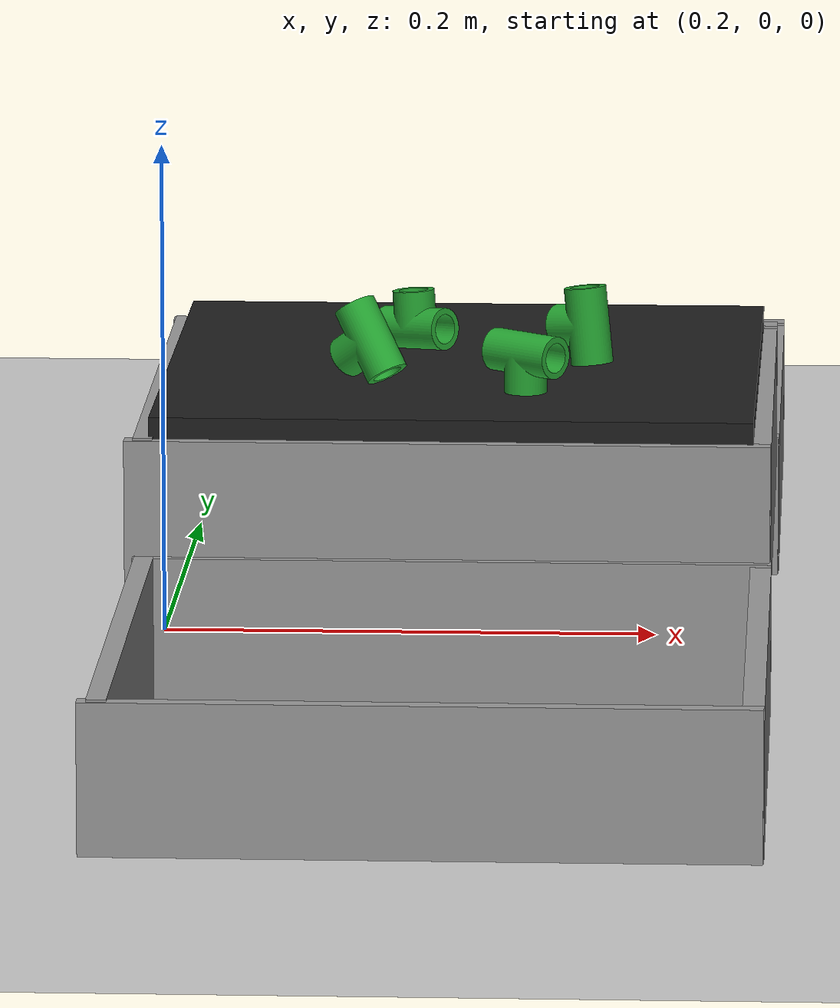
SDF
<sdf version="1.6">
 <world name="empty">
  <light name="sun" type="directional">
   <pose>0 0 10 0 -0 0</pose>
   <diffuse>0.8 0.8 0.8 1</diffuse>
   <specular>0.2 0.2 0.2 1</specular>
   <attenuation>
    <range>1000</range>
    <constant>0.9</constant>
    <linear>0.01</linear>
    <quadratic>0.001</quadratic>
   </attenuation>
   <direction>-0.5 0.1 -0.9</direction>
  </light>
  <model name="ground_plane">
   <static>1</static>
   <link name="link">
    <collision name="collision">
     <geometry><plane><normal>0 0 1</normal><size>100 100</size></plane></geometry>
     <surface><friction><ode><mu>100</mu><mu2>50</mu2></ode></friction></surface>
    </collision>
    <visual name="visual">
     <cast_shadows>0</cast_shadows>
     <geometry><plane><normal>0 0 1</normal><size>100 100</size></plane></geometry>
     <material>
      <script><uri>file://media/materials/scripts/gazebo.material</uri><name>Gazebo/Grey</name></script>
     </material>
    </visual>
   </link>
  </model>
  <physics name="default_physics" default="0" type="ode">
   <max_step_size>0.001</max_step_size>
   <real_time_factor>1</real_time_factor>
   <real_time_update_rate>1000</real_time_update_rate>
  </physics>
  <model name="table_box_model">
   <static>1</static>
   <pose>0.322423 -0.002458 0.055401 0 -0 1.5708</pose>
   <link name="table_box_link">
    <inertial>
     <mass>1</mass>
     <inertia>
      <ixx>0.166667</ixx>
      <ixy>0</ixy>
      <ixz>0</ixz>
      <iyy>0.166667</iyy>
      <iyz>0</iyz>
      <izz>0.166667</izz>
     </inertia>
    </inertial>
    <collision name="collision">
     <geometry><box><size>0.236707 0.237406 0.11625</size></box></geometry>
     <surface><friction><ode><mu>0.6</mu><mu2>0.6</mu2></ode></friction></surface>
    </collision>
    <visual name="visual">
     <geometry><box><size>0.236707 0.237406 0.11625</size></box></geometry>
     <material>
      <script><name>Gazebo/Black</name><uri>file://media/materials/scripts/gazebo.material</uri></script>
     </material>
    </visual>
   </link>
  </model>
  <gravity>0 0 -9.81</gravity>
  <magnetic_field>6e-06 2.3e-05 -4.2e-05</magnetic_field>
  <atmosphere type="adiabatic"/>
  <scene><ambient>0.4 0.4 0.4 1</ambient><background>0.7 0.7 0.7 1</background><shadows>1</shadows></scene>
  <spherical_coordinates>
   <surface_model>EARTH_WGS84</surface_model>
   <latitude_deg>0</latitude_deg>
   <longitude_deg>0</longitude_deg>
   <elevation>0</elevation>
   <heading_deg>0</heading_deg>
  </spherical_coordinates>
  <model name="coke_can_box_model_4_clone">
   <pose>0.367003 -0.066657 0.113601 1.5749 -0.005337 -2.22681</pose>
   <link name="coke_can">
    <inertial>
     <mass>1e-15</mass>
     <inertia><ixx>0.00016</ixx><ixy>0</ixy><ixz>0</ixz><iyy>0.00016</iyy><iyz>0</iyz><izz>6e-05</izz></inertia>
    </inertial>
    <collision name="collision">
     <geometry><mesh><uri>model://twp/meshes/TWP.STL</uri><scale>0.0005 0.0005 0.0005</scale></mesh></geometry>
     <surface>
      <friction><ode><mu>100</mu><mu2>100</mu2></ode></friction>
      <contact><ode><kp>1e+06</kp><kd>100</kd></ode></contact>
     </surface>
    </collision>
    <visual name="visual">
     <geometry><mesh><uri>model://twp/meshes/TWP.STL</uri><scale>0.0005 0.0005 0.0005</scale></mesh></geometry>
     <material>
      <script><name>Gazebo/Green</name><uri>file://media/materials/scripts/gazebo.material</uri></script>
     </material>
    </visual>
   </link>
  </model>
  <model name="bbox">
   <link name="link">
    <inertial>
     <mass>0.00036033</mass>
     <inertia>
      <ixx>1.2e-07</ixx>
      <ixy>0</ixy>
      <ixz>0</ixz>
      <iyy>1.43e-06</iyy>
      <iyz>0</iyz>
      <izz>1.31e-06</izz>
     </inertia>
    </inertial>
    <pose>0.200727 -0.115703 0.177148 0 -0 0</pose>
    <visual name="visual">
     <geometry><box><size>0.253827 0.006561 0.062445</size></box></geometry>
     <material>
      <script><name>Gazebo/Grey</name><uri>file://media/materials/scripts/gazebo.material</uri></script>
      <emissive>0 0 0 1</emissive>
      <shader type="pixel"><normal_map>__default__</normal_map></shader>
      <ambient>0.3 0.3 0.3 1</ambient>
      <diffuse>0.7 0.7 0.7 1</diffuse>
      <specular>0.01 0.01 0.01 1</specular>
     </material>
    </visual>
    <collision name="collision">
     <geometry><box><size>0.253827 0.006561 0.062445</size></box></geometry>
     <surface>
      <friction>
       <ode><mu>1</mu><mu2>1</mu2><fdir1>0 0 0</fdir1><slip1>0</slip1><slip2>0</slip2></ode>
       <torsional>
        <coefficient>1</coefficient>
        <patch_radius>0</patch_radius>
        <surface_radius>0</surface_radius>
        <use_patch_radius>1</use_patch_radius>
        <ode><slip>0</slip></ode>
       </torsional>
      </friction>
      <bounce><restitution_coefficient>0</restitution_coefficient><threshold>1e+06</threshold></bounce>
      <contact>
       <collide_without_contact>0</collide_without_contact>
       <collide_without_contact_bitmask>1</collide_without_contact_bitmask>
       <collide_bitmask>1</collide_bitmask>
       <ode>
        <soft_cfm>0</soft_cfm>
        <soft_erp>0.2</soft_erp>
        <kp>1e+13</kp>
        <kd>1</kd>
        <max_vel>0.01</max_vel>
        <min_depth>0</min_depth>
       </ode>
       <bullet>
        <split_impulse>1</split_impulse>
        <split_impulse_penetration_threshold>-0.01</split_impulse_penetration_threshold>
        <soft_cfm>0</soft_cfm>
        <soft_erp>0.2</soft_erp>
        <kp>1e+13</kp>
        <kd>1</kd>
       </bullet>
      </contact>
     </surface>
    </collision>
   </link>
   <link name="link_clone">
    <inertial>
     <mass>0.00048323</mass>
     <inertia><ixx>1.6e-07</ixx><ixy>0</ixy><ixz>0</ixz><iyy>1.95e-06</iyy><iyz>0</iyz><izz>1.8e-06</izz></inertia>
    </inertial>
    <pose>0.200752 0.124095 0.178106 -1e-05 -0 -0.000119</pose>
    <visual name="visual">
     <geometry><box><size>0.251174 0.008749 0.062028</size></box></geometry>
     <material>
      <script><name>Gazebo/Grey</name><uri>file://media/materials/scripts/gazebo.material</uri></script>
      <shader type="pixel"><normal_map>__default__</normal_map></shader>
      <emissive>0 0 0 1</emissive>
      <ambient>0.3 0.3 0.3 1</ambient>
      <diffuse>0.7 0.7 0.7 1</diffuse>
      <specular>0.01 0.01 0.01 1</specular>
     </material>
    </visual>
    <collision name="collision">
     <geometry><box><size>0.251174 0.008749 0.062028</size></box></geometry>
     <surface>
      <friction>
       <ode><mu>1</mu><mu2>1</mu2><fdir1>0 0 0</fdir1><slip1>0</slip1><slip2>0</slip2></ode>
       <torsional>
        <coefficient>1</coefficient>
        <patch_radius>0</patch_radius>
        <surface_radius>0</surface_radius>
        <use_patch_radius>1</use_patch_radius>
        <ode><slip>0</slip></ode>
       </torsional>
      </friction>
      <bounce><restitution_coefficient>0</restitution_coefficient><threshold>1e+06</threshold></bounce>
      <contact>
       <collide_without_contact>0</collide_without_contact>
       <collide_without_contact_bitmask>1</collide_without_contact_bitmask>
       <collide_bitmask>1</collide_bitmask>
       <ode>
        <soft_cfm>0</soft_cfm>
        <soft_erp>0.2</soft_erp>
        <kp>1e+13</kp>
        <kd>1</kd>
        <max_vel>0.01</max_vel>
        <min_depth>0</min_depth>
       </ode>
       <bullet>
        <split_impulse>1</split_impulse>
        <split_impulse_penetration_threshold>-0.01</split_impulse_penetration_threshold>
        <soft_cfm>0</soft_cfm>
        <soft_erp>0.2</soft_erp>
        <kp>1e+13</kp>
        <kd>1</kd>
       </bullet>
      </contact>
     </surface>
    </collision>
   </link>
   <link name="link_clone_0">
    <inertial>
     <mass>0.00045339</mass>
     <inertia><ixx>1.5e-07</ixx><ixy>0</ixy><ixz>0</ixz><iyy>1.75e-06</iyy><iyz>0</iyz><izz>1.6e-06</izz></inertia>
    </inertial>
    <pose>0.322983 0.005 0.176771 0 -1e-05 -1.56405</pose>
    <visual name="visual">
     <geometry><box><size>0.245781 0.008304 0.062746</size></box></geometry>
     <material>
      <script><name>Gazebo/Grey</name><uri>file://media/materials/scripts/gazebo.material</uri></script>
      <shader type="pixel"><normal_map>__default__</normal_map></shader>
      <emissive>0 0 0 1</emissive>
      <ambient>0.3 0.3 0.3 1</ambient>
      <diffuse>0.7 0.7 0.7 1</diffuse>
      <specular>0.01 0.01 0.01 1</specular>
     </material>
    </visual>
    <collision name="collision">
     <geometry><box><size>0.24781 0.008304 0.062746</size></box></geometry>
     <surface>
      <friction>
       <ode><mu>1</mu><mu2>1</mu2><fdir1>0 0 0</fdir1><slip1>0</slip1><slip2>0</slip2></ode>
       <torsional>
        <coefficient>1</coefficient>
        <patch_radius>0</patch_radius>
        <surface_radius>0</surface_radius>
        <use_patch_radius>1</use_patch_radius>
        <ode><slip>0</slip></ode>
       </torsional>
      </friction>
      <bounce><restitution_coefficient>0</restitution_coefficient><threshold>1e+06</threshold></bounce>
      <contact>
       <collide_without_contact>0</collide_without_contact>
       <collide_without_contact_bitmask>1</collide_without_contact_bitmask>
       <collide_bitmask>1</collide_bitmask>
       <ode>
        <soft_cfm>0</soft_cfm>
        <soft_erp>0.2</soft_erp>
        <kp>1e+13</kp>
        <kd>1</kd>
        <max_vel>0.01</max_vel>
        <min_depth>0</min_depth>
       </ode>
       <bullet>
        <split_impulse>1</split_impulse>
        <split_impulse_penetration_threshold>-0.01</split_impulse_penetration_threshold>
        <soft_cfm>0</soft_cfm>
        <soft_erp>0.2</soft_erp>
        <kp>1e+13</kp>
        <kd>1</kd>
       </bullet>
      </contact>
     </surface>
    </collision>
   </link>
   <link name="link_clone_0_clone">
    <inertial>
     <mass>0.00042111</mass>
     <inertia>
      <ixx>1.4e-07</ixx>
      <ixy>0</ixy>
      <ixz>0</ixz>
      <iyy>1.63e-06</iyy>
      <iyz>0</iyz>
      <izz>1.49e-06</izz>
     </inertia>
    </inertial>
    <pose>0.080423 0.005505 0.178062 -0 -2e-05 -1.56415</pose>
    <visual name="visual">
     <geometry><box><size>0.246174 0.007696 0.062424</size></box></geometry>
     <material>
      <script><name>Gazebo/Grey</name><uri>file://media/materials/scripts/gazebo.material</uri></script>
      <shader type="pixel"><normal_map>__default__</normal_map></shader>
      <emissive>0 0 0 1</emissive>
      <ambient>0.3 0.3 0.3 1</ambient>
      <diffuse>0.7 0.7 0.7 1</diffuse>
      <specular>0.01 0.01 0.01 1</specular>
     </material>
    </visual>
    <collision name="collision">
     <geometry><box><size>0.246174 0.007696 0.062424</size></box></geometry>
     <surface>
      <friction>
       <ode><mu>1</mu><mu2>1</mu2><fdir1>0 0 0</fdir1><slip1>0</slip1><slip2>0</slip2></ode>
       <torsional>
        <coefficient>1</coefficient>
        <patch_radius>0</patch_radius>
        <surface_radius>0</surface_radius>
        <use_patch_radius>1</use_patch_radius>
        <ode><slip>0</slip></ode>
       </torsional>
      </friction>
      <bounce><restitution_coefficient>0</restitution_coefficient><threshold>1e+06</threshold></bounce>
      <contact>
       <collide_without_contact>0</collide_without_contact>
       <collide_without_contact_bitmask>1</collide_without_contact_bitmask>
       <collide_bitmask>1</collide_bitmask>
       <ode>
        <soft_cfm>0</soft_cfm>
        <soft_erp>0.2</soft_erp>
        <kp>1e+13</kp>
        <kd>1</kd>
        <max_vel>0.01</max_vel>
        <min_depth>0</min_depth>
       </ode>
       <bullet>
        <split_impulse>1</split_impulse>
        <split_impulse_penetration_threshold>-0.01</split_impulse_penetration_threshold>
        <soft_cfm>0</soft_cfm>
        <soft_erp>0.2</soft_erp>
        <kp>1e+13</kp>
        <kd>1</kd>
       </bullet>
      </contact>
     </surface>
    </collision>
   </link>
   <joint name="link_JOINT_7" type="fixed">
    <parent>link</parent>
    <child>link_clone_0</child>
    <physics>
     <ode><limit><cfm>0</cfm><erp>0.2</erp></limit><suspension><cfm>0</cfm><erp>0.2</erp></suspension></ode>
    </physics>
   </joint>
   <joint name="link_clone_0_JOINT_8" type="fixed">
    <parent>link_clone_0</parent>
    <child>link_clone</child>
    <physics>
     <ode><limit><cfm>0</cfm><erp>0.2</erp></limit><suspension><cfm>0</cfm><erp>0.2</erp></suspension></ode>
    </physics>
   </joint>
   <joint name="link_clone_0_clone_JOINT_6" type="fixed">
    <parent>link_clone_0_clone</parent>
    <child>link</child>
    <physics>
     <ode><limit><cfm>0</cfm><erp>0.2</erp></limit><suspension><cfm>0</cfm><erp>0.2</erp></suspension></ode>
    </physics>
   </joint>
   <joint name="link_clone_JOINT_9" type="fixed">
    <parent>link_clone</parent>
    <child>link_clone_0_clone</child>
    <physics>
     <ode><limit><cfm>0</cfm><erp>0.2</erp></limit><suspension><cfm>0</cfm><erp>0.2</erp></suspension></ode>
    </physics>
   </joint>
   <static>1</static>
   <pose>0.120327 -0.006727 -0.103357 0 -0 0</pose>
  </model>
  <model name="bbox_clone">
   <link name="link">
    <inertial>
     <mass>0.00036033</mass>
     <inertia>
      <ixx>1.2e-07</ixx>
      <ixy>0</ixy>
      <ixz>0</ixz>
      <iyy>1.43e-06</iyy>
      <iyz>0</iyz>
      <izz>1.31e-06</izz>
     </inertia>
    </inertial>
    <pose>0.200727 -0.115703 0.177148 0 -0 0</pose>
    <visual name="visual">
     <geometry><box><size>0.253827 0.006561 0.062445</size></box></geometry>
     <material>
      <script><name>Gazebo/Grey</name><uri>file://media/materials/scripts/gazebo.material</uri></script>
      <emissive>0 0 0 1</emissive>
      <shader type="pixel"><normal_map>__default__</normal_map></shader>
      <ambient>0.3 0.3 0.3 1</ambient>
      <diffuse>0.7 0.7 0.7 1</diffuse>
      <specular>0.01 0.01 0.01 1</specular>
     </material>
    </visual>
    <collision name="collision">
     <geometry><box><size>0.253827 0.006561 0.062445</size></box></geometry>
     <surface>
      <friction>
       <ode><mu>1</mu><mu2>1</mu2><fdir1>0 0 0</fdir1><slip1>0</slip1><slip2>0</slip2></ode>
       <torsional>
        <coefficient>1</coefficient>
        <patch_radius>0</patch_radius>
        <surface_radius>0</surface_radius>
        <use_patch_radius>1</use_patch_radius>
        <ode><slip>0</slip></ode>
       </torsional>
      </friction>
      <bounce><restitution_coefficient>0</restitution_coefficient><threshold>1e+06</threshold></bounce>
      <contact>
       <collide_without_contact>0</collide_without_contact>
       <collide_without_contact_bitmask>1</collide_without_contact_bitmask>
       <collide_bitmask>1</collide_bitmask>
       <ode>
        <soft_cfm>0</soft_cfm>
        <soft_erp>0.2</soft_erp>
        <kp>1e+13</kp>
        <kd>1</kd>
        <max_vel>0.01</max_vel>
        <min_depth>0</min_depth>
       </ode>
       <bullet>
        <split_impulse>1</split_impulse>
        <split_impulse_penetration_threshold>-0.01</split_impulse_penetration_threshold>
        <soft_cfm>0</soft_cfm>
        <soft_erp>0.2</soft_erp>
        <kp>1e+13</kp>
        <kd>1</kd>
       </bullet>
      </contact>
     </surface>
    </collision>
   </link>
   <link name="link_clone">
    <inertial>
     <mass>0.00048323</mass>
     <inertia><ixx>1.6e-07</ixx><ixy>0</ixy><ixz>0</ixz><iyy>1.95e-06</iyy><iyz>0</iyz><izz>1.8e-06</izz></inertia>
    </inertial>
    <pose>0.200752 0.124095 0.178106 -1e-05 -0 -0.000119</pose>
    <visual name="visual">
     <geometry><box><size>0.251174 0.008749 0.062028</size></box></geometry>
     <material>
      <script><name>Gazebo/Grey</name><uri>file://media/materials/scripts/gazebo.material</uri></script>
      <shader type="pixel"><normal_map>__default__</normal_map></shader>
      <emissive>0 0 0 1</emissive>
      <ambient>0.3 0.3 0.3 1</ambient>
      <diffuse>0.7 0.7 0.7 1</diffuse>
      <specular>0.01 0.01 0.01 1</specular>
     </material>
    </visual>
    <collision name="collision">
     <geometry><box><size>0.251174 0.008749 0.062028</size></box></geometry>
     <surface>
      <friction>
       <ode><mu>1</mu><mu2>1</mu2><fdir1>0 0 0</fdir1><slip1>0</slip1><slip2>0</slip2></ode>
       <torsional>
        <coefficient>1</coefficient>
        <patch_radius>0</patch_radius>
        <surface_radius>0</surface_radius>
        <use_patch_radius>1</use_patch_radius>
        <ode><slip>0</slip></ode>
       </torsional>
      </friction>
      <bounce><restitution_coefficient>0</restitution_coefficient><threshold>1e+06</threshold></bounce>
      <contact>
       <collide_without_contact>0</collide_without_contact>
       <collide_without_contact_bitmask>1</collide_without_contact_bitmask>
       <collide_bitmask>1</collide_bitmask>
       <ode>
        <soft_cfm>0</soft_cfm>
        <soft_erp>0.2</soft_erp>
        <kp>1e+13</kp>
        <kd>1</kd>
        <max_vel>0.01</max_vel>
        <min_depth>0</min_depth>
       </ode>
       <bullet>
        <split_impulse>1</split_impulse>
        <split_impulse_penetration_threshold>-0.01</split_impulse_penetration_threshold>
        <soft_cfm>0</soft_cfm>
        <soft_erp>0.2</soft_erp>
        <kp>1e+13</kp>
        <kd>1</kd>
       </bullet>
      </contact>
     </surface>
    </collision>
   </link>
   <link name="link_clone_0">
    <inertial>
     <mass>0.00045339</mass>
     <inertia><ixx>1.5e-07</ixx><ixy>0</ixy><ixz>0</ixz><iyy>1.75e-06</iyy><iyz>0</iyz><izz>1.6e-06</izz></inertia>
    </inertial>
    <pose>0.322983 0.005 0.176771 0 -1e-05 -1.56405</pose>
    <visual name="visual">
     <geometry><box><size>0.245781 0.008304 0.062746</size></box></geometry>
     <material>
      <script><name>Gazebo/Grey</name><uri>file://media/materials/scripts/gazebo.material</uri></script>
      <shader type="pixel"><normal_map>__default__</normal_map></shader>
      <emissive>0 0 0 1</emissive>
      <ambient>0.3 0.3 0.3 1</ambient>
      <diffuse>0.7 0.7 0.7 1</diffuse>
      <specular>0.01 0.01 0.01 1</specular>
     </material>
    </visual>
    <collision name="collision">
     <geometry><box><size>0.24781 0.008304 0.062746</size></box></geometry>
     <surface>
      <friction>
       <ode><mu>1</mu><mu2>1</mu2><fdir1>0 0 0</fdir1><slip1>0</slip1><slip2>0</slip2></ode>
       <torsional>
        <coefficient>1</coefficient>
        <patch_radius>0</patch_radius>
        <surface_radius>0</surface_radius>
        <use_patch_radius>1</use_patch_radius>
        <ode><slip>0</slip></ode>
       </torsional>
      </friction>
      <bounce><restitution_coefficient>0</restitution_coefficient><threshold>1e+06</threshold></bounce>
      <contact>
       <collide_without_contact>0</collide_without_contact>
       <collide_without_contact_bitmask>1</collide_without_contact_bitmask>
       <collide_bitmask>1</collide_bitmask>
       <ode>
        <soft_cfm>0</soft_cfm>
        <soft_erp>0.2</soft_erp>
        <kp>1e+13</kp>
        <kd>1</kd>
        <max_vel>0.01</max_vel>
        <min_depth>0</min_depth>
       </ode>
       <bullet>
        <split_impulse>1</split_impulse>
        <split_impulse_penetration_threshold>-0.01</split_impulse_penetration_threshold>
        <soft_cfm>0</soft_cfm>
        <soft_erp>0.2</soft_erp>
        <kp>1e+13</kp>
        <kd>1</kd>
       </bullet>
      </contact>
     </surface>
    </collision>
   </link>
   <link name="link_clone_0_clone">
    <inertial>
     <mass>0.00042111</mass>
     <inertia>
      <ixx>1.4e-07</ixx>
      <ixy>0</ixy>
      <ixz>0</ixz>
      <iyy>1.63e-06</iyy>
      <iyz>0</iyz>
      <izz>1.49e-06</izz>
     </inertia>
    </inertial>
    <pose>0.080423 0.005505 0.178062 -0 -2e-05 -1.56415</pose>
    <visual name="visual">
     <geometry><box><size>0.246174 0.007696 0.062424</size></box></geometry>
     <material>
      <script><name>Gazebo/Grey</name><uri>file://media/materials/scripts/gazebo.material</uri></script>
      <shader type="pixel"><normal_map>__default__</normal_map></shader>
      <emissive>0 0 0 1</emissive>
      <ambient>0.3 0.3 0.3 1</ambient>
      <diffuse>0.7 0.7 0.7 1</diffuse>
      <specular>0.01 0.01 0.01 1</specular>
     </material>
    </visual>
    <collision name="collision">
     <geometry><box><size>0.246174 0.007696 0.062424</size></box></geometry>
     <surface>
      <friction>
       <ode><mu>1</mu><mu2>1</mu2><fdir1>0 0 0</fdir1><slip1>0</slip1><slip2>0</slip2></ode>
       <torsional>
        <coefficient>1</coefficient>
        <patch_radius>0</patch_radius>
        <surface_radius>0</surface_radius>
        <use_patch_radius>1</use_patch_radius>
        <ode><slip>0</slip></ode>
       </torsional>
      </friction>
      <bounce><restitution_coefficient>0</restitution_coefficient><threshold>1e+06</threshold></bounce>
      <contact>
       <collide_without_contact>0</collide_without_contact>
       <collide_without_contact_bitmask>1</collide_without_contact_bitmask>
       <collide_bitmask>1</collide_bitmask>
       <ode>
        <soft_cfm>0</soft_cfm>
        <soft_erp>0.2</soft_erp>
        <kp>1e+13</kp>
        <kd>1</kd>
        <max_vel>0.01</max_vel>
        <min_depth>0</min_depth>
       </ode>
       <bullet>
        <split_impulse>1</split_impulse>
        <split_impulse_penetration_threshold>-0.01</split_impulse_penetration_threshold>
        <soft_cfm>0</soft_cfm>
        <soft_erp>0.2</soft_erp>
        <kp>1e+13</kp>
        <kd>1</kd>
       </bullet>
      </contact>
     </surface>
    </collision>
   </link>
   <joint name="link_JOINT_7" type="fixed">
    <parent>link</parent>
    <child>link_clone_0</child>
    <physics>
     <ode><limit><cfm>0</cfm><erp>0.2</erp></limit><suspension><cfm>0</cfm><erp>0.2</erp></suspension></ode>
    </physics>
   </joint>
   <joint name="link_clone_0_JOINT_8" type="fixed">
    <parent>link_clone_0</parent>
    <child>link_clone</child>
    <physics>
     <ode><limit><cfm>0</cfm><erp>0.2</erp></limit><suspension><cfm>0</cfm><erp>0.2</erp></suspension></ode>
    </physics>
   </joint>
   <joint name="link_clone_0_clone_JOINT_6" type="fixed">
    <parent>link_clone_0_clone</parent>
    <child>link</child>
    <physics>
     <ode><limit><cfm>0</cfm><erp>0.2</erp></limit><suspension><cfm>0</cfm><erp>0.2</erp></suspension></ode>
    </physics>
   </joint>
   <joint name="link_clone_JOINT_9" type="fixed">
    <parent>link_clone</parent>
    <child>link_clone_0_clone</child>
    <physics>
     <ode><limit><cfm>0</cfm><erp>0.2</erp></limit><suspension><cfm>0</cfm><erp>0.2</erp></suspension></ode>
    </physics>
   </joint>
   <static>1</static>
   <pose>0.119906 0.234641 -0.150393 0 -0 0</pose>
  </model>
  <model name="bbox_clone_clone">
   <link name="link">
    <inertial>
     <mass>0.00036033</mass>
     <inertia>
      <ixx>1.2e-07</ixx>
      <ixy>0</ixy>
      <ixz>0</ixz>
      <iyy>1.43e-06</iyy>
      <iyz>0</iyz>
      <izz>1.31e-06</izz>
     </inertia>
    </inertial>
    <pose>0.200727 -0.115703 0.177148 0 -0 0</pose>
    <visual name="visual">
     <geometry><box><size>0.253827 0.006561 0.062445</size></box></geometry>
     <material>
      <script><name>Gazebo/Grey</name><uri>file://media/materials/scripts/gazebo.material</uri></script>
      <emissive>0 0 0 1</emissive>
      <shader type="pixel"><normal_map>__default__</normal_map></shader>
      <ambient>0.3 0.3 0.3 1</ambient>
      <diffuse>0.7 0.7 0.7 1</diffuse>
      <specular>0.01 0.01 0.01 1</specular>
     </material>
    </visual>
    <collision name="collision">
     <geometry><box><size>0.253827 0.006561 0.062445</size></box></geometry>
     <surface>
      <friction>
       <ode><mu>1</mu><mu2>1</mu2><fdir1>0 0 0</fdir1><slip1>0</slip1><slip2>0</slip2></ode>
       <torsional>
        <coefficient>1</coefficient>
        <patch_radius>0</patch_radius>
        <surface_radius>0</surface_radius>
        <use_patch_radius>1</use_patch_radius>
        <ode><slip>0</slip></ode>
       </torsional>
      </friction>
      <bounce><restitution_coefficient>0</restitution_coefficient><threshold>1e+06</threshold></bounce>
      <contact>
       <collide_without_contact>0</collide_without_contact>
       <collide_without_contact_bitmask>1</collide_without_contact_bitmask>
       <collide_bitmask>1</collide_bitmask>
       <ode>
        <soft_cfm>0</soft_cfm>
        <soft_erp>0.2</soft_erp>
        <kp>1e+13</kp>
        <kd>1</kd>
        <max_vel>0.01</max_vel>
        <min_depth>0</min_depth>
       </ode>
       <bullet>
        <split_impulse>1</split_impulse>
        <split_impulse_penetration_threshold>-0.01</split_impulse_penetration_threshold>
        <soft_cfm>0</soft_cfm>
        <soft_erp>0.2</soft_erp>
        <kp>1e+13</kp>
        <kd>1</kd>
       </bullet>
      </contact>
     </surface>
    </collision>
   </link>
   <link name="link_clone">
    <inertial>
     <mass>0.00048323</mass>
     <inertia><ixx>1.6e-07</ixx><ixy>0</ixy><ixz>0</ixz><iyy>1.95e-06</iyy><iyz>0</iyz><izz>1.8e-06</izz></inertia>
    </inertial>
    <pose>0.200752 0.124095 0.178106 -1e-05 -0 -0.000119</pose>
    <visual name="visual">
     <geometry><box><size>0.251174 0.008749 0.062028</size></box></geometry>
     <material>
      <script><name>Gazebo/Grey</name><uri>file://media/materials/scripts/gazebo.material</uri></script>
      <shader type="pixel"><normal_map>__default__</normal_map></shader>
      <emissive>0 0 0 1</emissive>
      <ambient>0.3 0.3 0.3 1</ambient>
      <diffuse>0.7 0.7 0.7 1</diffuse>
      <specular>0.01 0.01 0.01 1</specular>
     </material>
    </visual>
    <collision name="collision">
     <geometry><box><size>0.251174 0.008749 0.062028</size></box></geometry>
     <surface>
      <friction>
       <ode><mu>1</mu><mu2>1</mu2><fdir1>0 0 0</fdir1><slip1>0</slip1><slip2>0</slip2></ode>
       <torsional>
        <coefficient>1</coefficient>
        <patch_radius>0</patch_radius>
        <surface_radius>0</surface_radius>
        <use_patch_radius>1</use_patch_radius>
        <ode><slip>0</slip></ode>
       </torsional>
      </friction>
      <bounce><restitution_coefficient>0</restitution_coefficient><threshold>1e+06</threshold></bounce>
      <contact>
       <collide_without_contact>0</collide_without_contact>
       <collide_without_contact_bitmask>1</collide_without_contact_bitmask>
       <collide_bitmask>1</collide_bitmask>
       <ode>
        <soft_cfm>0</soft_cfm>
        <soft_erp>0.2</soft_erp>
        <kp>1e+13</kp>
        <kd>1</kd>
        <max_vel>0.01</max_vel>
        <min_depth>0</min_depth>
       </ode>
       <bullet>
        <split_impulse>1</split_impulse>
        <split_impulse_penetration_threshold>-0.01</split_impulse_penetration_threshold>
        <soft_cfm>0</soft_cfm>
        <soft_erp>0.2</soft_erp>
        <kp>1e+13</kp>
        <kd>1</kd>
       </bullet>
      </contact>
     </surface>
    </collision>
   </link>
   <link name="link_clone_0">
    <inertial>
     <mass>0.00045339</mass>
     <inertia><ixx>1.5e-07</ixx><ixy>0</ixy><ixz>0</ixz><iyy>1.75e-06</iyy><iyz>0</iyz><izz>1.6e-06</izz></inertia>
    </inertial>
    <pose>0.322983 0.005 0.176771 0 -1e-05 -1.56405</pose>
    <visual name="visual">
     <geometry><box><size>0.245781 0.008304 0.062746</size></box></geometry>
     <material>
      <script><name>Gazebo/Grey</name><uri>file://media/materials/scripts/gazebo.material</uri></script>
      <shader type="pixel"><normal_map>__default__</normal_map></shader>
      <emissive>0 0 0 1</emissive>
      <ambient>0.3 0.3 0.3 1</ambient>
      <diffuse>0.7 0.7 0.7 1</diffuse>
      <specular>0.01 0.01 0.01 1</specular>
     </material>
    </visual>
    <collision name="collision">
     <geometry><box><size>0.24781 0.008304 0.062746</size></box></geometry>
     <surface>
      <friction>
       <ode><mu>1</mu><mu2>1</mu2><fdir1>0 0 0</fdir1><slip1>0</slip1><slip2>0</slip2></ode>
       <torsional>
        <coefficient>1</coefficient>
        <patch_radius>0</patch_radius>
        <surface_radius>0</surface_radius>
        <use_patch_radius>1</use_patch_radius>
        <ode><slip>0</slip></ode>
       </torsional>
      </friction>
      <bounce><restitution_coefficient>0</restitution_coefficient><threshold>1e+06</threshold></bounce>
      <contact>
       <collide_without_contact>0</collide_without_contact>
       <collide_without_contact_bitmask>1</collide_without_contact_bitmask>
       <collide_bitmask>1</collide_bitmask>
       <ode>
        <soft_cfm>0</soft_cfm>
        <soft_erp>0.2</soft_erp>
        <kp>1e+13</kp>
        <kd>1</kd>
        <max_vel>0.01</max_vel>
        <min_depth>0</min_depth>
       </ode>
       <bullet>
        <split_impulse>1</split_impulse>
        <split_impulse_penetration_threshold>-0.01</split_impulse_penetration_threshold>
        <soft_cfm>0</soft_cfm>
        <soft_erp>0.2</soft_erp>
        <kp>1e+13</kp>
        <kd>1</kd>
       </bullet>
      </contact>
     </surface>
    </collision>
   </link>
   <link name="link_clone_0_clone">
    <inertial>
     <mass>0.00042111</mass>
     <inertia>
      <ixx>1.4e-07</ixx>
      <ixy>0</ixy>
      <ixz>0</ixz>
      <iyy>1.63e-06</iyy>
      <iyz>0</iyz>
      <izz>1.49e-06</izz>
     </inertia>
    </inertial>
    <pose>0.080423 0.005505 0.178062 -0 -2e-05 -1.56415</pose>
    <visual name="visual">
     <geometry><box><size>0.246174 0.007696 0.062424</size></box></geometry>
     <material>
      <script><name>Gazebo/Grey</name><uri>file://media/materials/scripts/gazebo.material</uri></script>
      <shader type="pixel"><normal_map>__default__</normal_map></shader>
      <emissive>0 0 0 1</emissive>
      <ambient>0.3 0.3 0.3 1</ambient>
      <diffuse>0.7 0.7 0.7 1</diffuse>
      <specular>0.01 0.01 0.01 1</specular>
     </material>
    </visual>
    <collision name="collision">
     <geometry><box><size>0.246174 0.007696 0.062424</size></box></geometry>
     <surface>
      <friction>
       <ode><mu>1</mu><mu2>1</mu2><fdir1>0 0 0</fdir1><slip1>0</slip1><slip2>0</slip2></ode>
       <torsional>
        <coefficient>1</coefficient>
        <patch_radius>0</patch_radius>
        <surface_radius>0</surface_radius>
        <use_patch_radius>1</use_patch_radius>
        <ode><slip>0</slip></ode>
       </torsional>
      </friction>
      <bounce><restitution_coefficient>0</restitution_coefficient><threshold>1e+06</threshold></bounce>
      <contact>
       <collide_without_contact>0</collide_without_contact>
       <collide_without_contact_bitmask>1</collide_without_contact_bitmask>
       <collide_bitmask>1</collide_bitmask>
       <ode>
        <soft_cfm>0</soft_cfm>
        <soft_erp>0.2</soft_erp>
        <kp>1e+13</kp>
        <kd>1</kd>
        <max_vel>0.01</max_vel>
        <min_depth>0</min_depth>
       </ode>
       <bullet>
        <split_impulse>1</split_impulse>
        <split_impulse_penetration_threshold>-0.01</split_impulse_penetration_threshold>
        <soft_cfm>0</soft_cfm>
        <soft_erp>0.2</soft_erp>
        <kp>1e+13</kp>
        <kd>1</kd>
       </bullet>
      </contact>
     </surface>
    </collision>
   </link>
   <joint name="link_JOINT_7" type="fixed">
    <parent>link</parent>
    <child>link_clone_0</child>
    <physics>
     <ode><limit><cfm>0</cfm><erp>0.2</erp></limit><suspension><cfm>0</cfm><erp>0.2</erp></suspension></ode>
    </physics>
   </joint>
   <joint name="link_clone_0_JOINT_8" type="fixed">
    <parent>link_clone_0</parent>
    <child>link_clone</child>
    <physics>
     <ode><limit><cfm>0</cfm><erp>0.2</erp></limit><suspension><cfm>0</cfm><erp>0.2</erp></suspension></ode>
    </physics>
   </joint>
   <joint name="link_clone_0_clone_JOINT_6" type="fixed">
    <parent>link_clone_0_clone</parent>
    <child>link</child>
    <physics>
     <ode><limit><cfm>0</cfm><erp>0.2</erp></limit><suspension><cfm>0</cfm><erp>0.2</erp></suspension></ode>
    </physics>
   </joint>
   <joint name="link_clone_JOINT_9" type="fixed">
    <parent>link_clone</parent>
    <child>link_clone_0_clone</child>
    <physics>
     <ode><limit><cfm>0</cfm><erp>0.2</erp></limit><suspension><cfm>0</cfm><erp>0.2</erp></suspension></ode>
    </physics>
   </joint>
   <static>1</static>
   <pose>0.122284 -0.249242 -0.150393 0 -0 0</pose>
  </model>
  <model name="coke_can_box_model_4_clone_clone">
   <pose>0.288997 -0.04015 0.10955 0.594728 -0.005337 -2.22681</pose>
   <link name="coke_can">
    <inertial>
     <mass>1e-15</mass>
     <inertia><ixx>0.00016</ixx><ixy>0</ixy><ixz>0</ixz><iyy>0.00016</iyy><iyz>0</iyz><izz>6e-05</izz></inertia>
    </inertial>
    <collision name="collision">
     <geometry><mesh><uri>model://twp/meshes/TWP.STL</uri><scale>0.0005 0.0005 0.0005</scale></mesh></geometry>
     <surface>
      <friction><ode><mu>100</mu><mu2>100</mu2></ode></friction>
      <contact><ode><kp>1e+06</kp><kd>100</kd></ode></contact>
     </surface>
    </collision>
    <visual name="visual">
     <geometry><mesh><uri>model://twp/meshes/TWP.STL</uri><scale>0.0005 0.0005 0.0005</scale></mesh></geometry>
     <material>
      <script><name>Gazebo/Green</name><uri>file://media/materials/scripts/gazebo.material</uri></script>
     </material>
    </visual>
   </link>
  </model>
  <model name="coke_can_box_model_4_clone_clone_0">
   <pose>0.293693 0.031583 0.137365 -1.48006 -0.005337 -2.22681</pose>
   <link name="coke_can">
    <inertial>
     <mass>1e-15</mass>
     <inertia><ixx>0.00016</ixx><ixy>0</ixy><ixz>0</ixz><iyy>0.00016</iyy><iyz>0</iyz><izz>6e-05</izz></inertia>
    </inertial>
    <collision name="collision">
     <geometry><mesh><uri>model://twp/meshes/TWP.STL</uri><scale>0.0005 0.0005 0.0005</scale></mesh></geometry>
     <surface>
      <friction><ode><mu>100</mu><mu2>100</mu2></ode></friction>
      <contact><ode><kp>1e+06</kp><kd>100</kd></ode></contact>
     </surface>
    </collision>
    <visual name="visual">
     <geometry><mesh><uri>model://twp/meshes/TWP.STL</uri><scale>0.0005 0.0005 0.0005</scale></mesh></geometry>
     <material>
      <script><name>Gazebo/Green</name><uri>file://media/materials/scripts/gazebo.material</uri></script>
     </material>
    </visual>
   </link>
  </model>
  <model name="coke_can_box_model_4_clone_clone_1">
   <pose>0.367217 0.005135 0.112567 0.131089 -0.005337 -2.22681</pose>
   <link name="coke_can">
    <inertial>
     <mass>1e-15</mass>
     <inertia><ixx>0.00016</ixx><ixy>0</ixy><ixz>0</ixz><iyy>0.00016</iyy><iyz>0</iyz><izz>6e-05</izz></inertia>
    </inertial>
    <collision name="collision">
     <geometry><mesh><uri>model://twp/meshes/TWP.STL</uri><scale>0.0005 0.0005 0.0005</scale></mesh></geometry>
     <surface>
      <friction><ode><mu>100</mu><mu2>100</mu2></ode></friction>
      <contact><ode><kp>1e+06</kp><kd>100</kd></ode></contact>
     </surface>
    </collision>
    <visual name="visual">
     <geometry><mesh><uri>model://twp/meshes/TWP.STL</uri><scale>0.0005 0.0005 0.0005</scale></mesh></geometry>
     <material>
      <script><name>Gazebo/Green</name><uri>file://media/materials/scripts/gazebo.material</uri></script>
     </material>
    </visual>
   </link>
  </model>
 </world>
</sdf>
